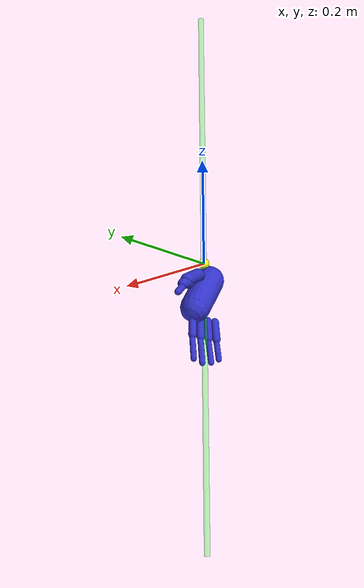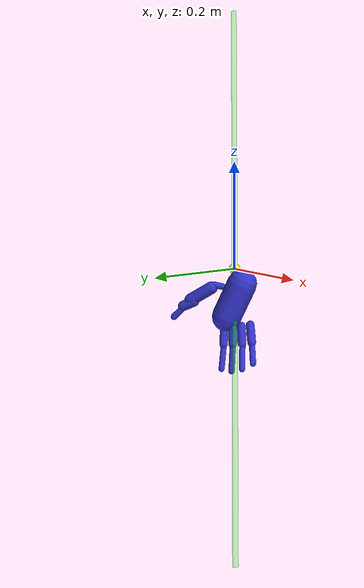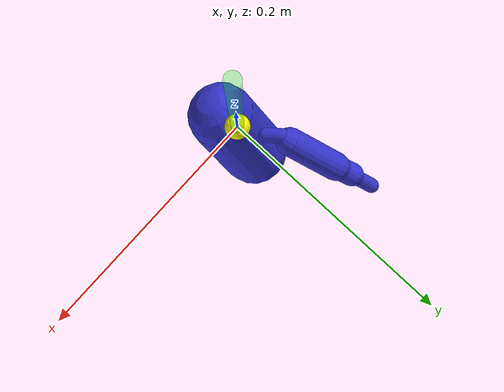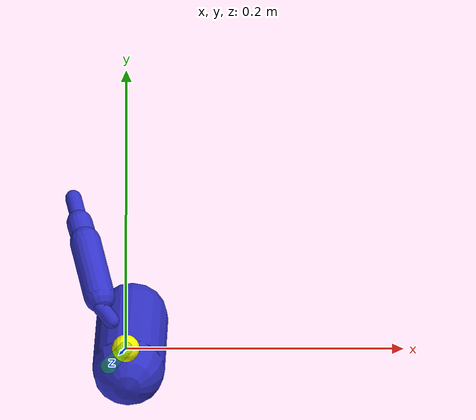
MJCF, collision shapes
<mujoco model="inspire right hand">
  <statistic center="0.3 0 0.4" extent="1"/>
  <compiler angle="radian" meshdir="./" autolimits="true"/>
  <visual>
    <headlight diffuse="0.6 0.6 0.6" ambient="0.3 0.3 0.3" specular="0 0 0"/>
    <rgba haze="0.15 0.25 0.35 1"/>
    <global azimuth="120" elevation="20"/>
  </visual>
  <default>
    <joint damping="1"/>
    <muscle ctrllimited="true" ctrlrange="0 100"/>
    <motor ctrllimited="true" ctrlrange="-3 3"/>
    <position ctrllimited="true" kp="10"/>
  </default>
  <asset>
    <mesh name="r_palm_vis" file="meshes/inspire_hands/rh_base_link.STL"/>
    <mesh name="r_palm_col" file="meshes/inspire_hands/rh_base_link.STL"/>
    <mesh name="r_thumb_proximal_1_vis" file="meshes/inspire_hands/rh_Link11.STL"/>
    <mesh name="r_thumb_proximal_1_col" file="meshes/inspire_hands/rh_Link11.STL"/>
    <mesh name="r_thumb_proximal_2_vis" file="meshes/inspire_hands/rh_Link12.STL"/>
    <mesh name="r_thumb_proximal_2_col" file="meshes/inspire_hands/rh_Link12.STL"/>
    <mesh name="r_thumb_middle_vis" file="meshes/inspire_hands/rh_Link13.STL"/>
    <mesh name="r_thumb_middle_col" file="meshes/inspire_hands/rh_Link13.STL"/>
    <mesh name="r_thumb_distal_vis" file="meshes/inspire_hands/rh_Link14.STL"/>
    <mesh name="r_thumb_distal_col" file="meshes/inspire_hands/rh_Link14.STL"/>
    <mesh name="r_index_proximal_vis" file="meshes/inspire_hands/rh_Link15.STL"/>
    <mesh name="r_index_proximal_col" file="meshes/inspire_hands/rh_Link15.STL"/>
    <mesh name="r_index_distal_vis" file="meshes/inspire_hands/rh_Link16.STL"/>
    <mesh name="r_index_distal_col" file="meshes/inspire_hands/rh_Link16.STL"/>
    <mesh name="r_middle_proximal_vis" file="meshes/inspire_hands/rh_Link17.STL"/>
    <mesh name="r_middle_proximal_col" file="meshes/inspire_hands/rh_Link17.STL"/>
    <mesh name="r_middle_distal_vis" file="meshes/inspire_hands/rh_Link18.STL"/>
    <mesh name="r_middle_distal_col" file="meshes/inspire_hands/rh_Link18.STL"/>
    <mesh name="r_ring_proximal_vis" file="meshes/inspire_hands/rh_Link19.STL"/>
    <mesh name="r_ring_proximal_col" file="meshes/inspire_hands/rh_Link19.STL"/>
    <mesh name="r_ring_distal_vis" file="meshes/inspire_hands/rh_Link20.STL"/>
    <mesh name="r_ring_distal_col" file="meshes/inspire_hands/rh_Link20.STL"/>
    <mesh name="r_pinky_proximal_vis" file="meshes/inspire_hands/rh_Link21.STL"/>
    <mesh name="r_pinky_proximal_col" file="meshes/inspire_hands/rh_Link21.STL"/>
    <mesh name="r_pinky_distal_vis" file="meshes/inspire_hands/rh_Link22.STL"/>
    <mesh name="r_pinky_distal_col" file="meshes/inspire_hands/rh_Link22.STL"/>
    <material name="site_right_hand" rgba="0.1882 0.1882 0.1882 0"/>
    <material name="r_base_material" rgba="0 0 0 1"/>
    <material name="r_thumb_material" rgba="0 0 0 1"/>
    <material name="r_index_material" rgba="0 0 0 1"/>
    <material name="r_middle_material" rgba="0 0 0 1"/>
    <material name="r_ring_material" rgba="0 0 0 1"/>
    <material name="r_pinky_material" rgba="0 0 0 1"/>
    <material name="r_thumb_distal_material" rgba="0 0 0 1"/>
  </asset>
  <worldbody>
    <body name="right_hand" pos="0 0 0" quat="0.7071068 0.7071068 0 0">
      <site name="ft_frame" pos="0 0 0" size="0.01 0.01 0.01" rgba="1 0 0 0" type="sphere" group="1"/>
      <inertial diaginertia="0 0 0" mass="0" pos="0 0 0"/>
      <body name="eef" pos="0 0 0" quat="0.707 0. -0.707 0.">
        <site name="grip_site" pos="0 0 0" size="0.01 0.01 0.01" rgba="1 1 0 1" type="sphere" group="2"/>
        <site name="ee_x" pos="0.1 0 0" size="0.005 .1" quat="0.707105  0 0.707108 0 " rgba="1 0 0 0" type="cylinder" group="1"/>
        <site name="ee_y" pos="0 0.1 0" size="0.005 .1" quat="0.707105 0.707108 0 0" rgba="0 1 0 0" type="cylinder" group="1"/>
        <site name="ee_z" pos="0 0 0.1" size="0.005 .1" quat="1 0 0 0" rgba="0 0 1 0" type="cylinder" group="1"/>
        <site name="grip_site_cylinder" pos="0 0 0" quat="-0.5 -0.5 -0.5 0.5" size="0.005 0.5" rgba="0 1 0 0.3" type="cylinder" group="1"/>
      </body>
      <body name="r_palm" pos="0 0 0">
        <geom name="r_palm_vis" type="mesh" mesh="r_palm_vis" material="r_base_material" group="1" contype="0" conaffinity="0"/>
        <geom name="r_palm_col" type="capsule" mass="0.1" pos="0.002151 -0.056320 -0.002167" quat="0.876998 -0.480329 -0.012593 0.000000" size="0.026290 0.033685" rgba="0.2 0.2 0.8 0.5"/>
        <body name="r_thumb" pos="0. 0. 0.">
          <body name="r_thumb_proximal_1" pos="-0.01496 -0.0375 -0.02045" quat="0.5 0.5 -0.5 0.5">
            <joint name="joint_r_thumb_proximal_1" type="hinge" pos="0 0 0" axis="0 0 -1" range="0 1.30" limited="true" damping="1"/>
            <geom name="r_thumb_proximal_vis" type="mesh" mesh="r_thumb_proximal_1_vis" material="r_thumb_material" group="1" contype="0" conaffinity="0"> </geom>
            <geom name="r_thumb_proximal_col" type="capsule" mass="0.1" pos="-0.003896 0.000170 -0.007183" quat="0.624328 -0.487842 -0.610102 0.000000" size="0.005837 0.006488" rgba="0.2 0.2 0.8 0.5"/>
            <body name="r_thumb_proximal_2" pos="-0.0088099 0.010892 -0.00925" quat="0.1 0.1 0.7 0.7">
              <joint name="joint_r_thumb_proximal_2" type="hinge" pos="0 0 0" axis="0 0 1" range="0 0.68" limited="true" damping="1"/>
              <geom name="r_thumb_proximal_2_vis" type="mesh" mesh="r_thumb_proximal_2_vis" material="r_thumb_material" group="1" contype="0" conaffinity="0"> </geom>
              <geom name="r_thumb_proximal_2_col" type="capsule" mass="0.1" pos="0.026056 0.015147 -0.008029" quat="0.712011 0.306151 -0.631912 0.000000" size="0.011387 0.022875" rgba="0.2 0.2 0.8 0.5"/>
              <site name="site_r_thumb_proximal_2" size="0.01" material="site_right_hand"/>
              <body name="r_thumb_middle" pos="0.04407 0.034553 -0.0008" quat="1 0 0 0">
                <joint name="joint_r_thumb_middle" type="hinge" pos="0 0 0" axis="0 0 1" range="0 0.68" limited="true" damping="1"/>
                <geom name="r_thumb_middle_vis" type="mesh" mesh="r_thumb_middle_vis" material="r_thumb_material" group="1" contype="0" conaffinity="0"/>
                <geom name="r_thumb_middle_col" type="capsule" mass="0.1" pos="0.006593 -0.002430 -0.007229" quat="0.714062 -0.232948 0.660189 0.000000" size="0.009445 0.011355" rgba="0.2 0.2 0.8 0.5"/>
                <site name="site_r_thumb_middle" size="0.01" material="site_right_hand"/>
                <body name="r_thumb_distal" pos="0.020248 0.010156 -0.0012" quat="1 0 0 0">
                  <joint name="joint_r_thumb_distal" type="hinge" pos="0 0 0" axis="0 0 1" range="0 0.77" limited="true" damping="1"/>
                  <geom name="r_thumb_distal_vis" type="mesh" mesh="r_thumb_distal_vis" material="r_thumb_distal_material" group="1" contype="0" conaffinity="0"> </geom>
                  <geom name="r_thumb_distal_col" type="capsule" mass="0.1" pos="0.008683 0.004374 -0.005997" quat="0.707842 -0.454578 0.540665 0.000000" size="0.006027 0.009085" rgba="0.2 0.2 0.8 0.5"/>
                  <site name="site_r_thumb_distal" size="0.01" material="site_right_hand"/>
                </body>
              </body>
            </body>
          </body>
        </body>
        <body name="r_index" pos="0 0 0">
          <body name="r_index_proximal" pos="0.0022853 -0.10493 -0.032268" quat="0.01745 -0.99985 0.0 0.0">
            <joint name="joint_r_index_proximal" type="hinge" pos="0 0 0" axis="0 0 1" range="0 1.62" limited="true" damping="1"/>
            <site name="site_r_index_proximal" size="0.01" material="site_right_hand"/>
            <geom name="r_index_proximal_vis" type="mesh" mesh="r_index_proximal_vis" material="r_index_material" group="1" contype="0" conaffinity="0"/>
            <geom name="r_index_proximal_col" type="capsule" mass="0.1" pos="0.001064 0.013080 -0.006003" quat="0.706625 -0.707445 -0.014213 0.000000" size="0.007360 0.015263" rgba="0.2 0.2 0.8 0.5"/>
            <body name="r_index_distal" pos="-0.0026138 0.032026 -0.001" quat="1 0 0 0">
              <joint name="joint_r_index_distal" type="hinge" pos="0 0 0" axis="0 0 1" range="0 1.82" limited="true" damping="1"/>
              <site name="site_r_index_distal" size="0.01" material="site_right_hand"/>
              <geom name="r_index_distal_vis" type="mesh" mesh="r_index_distal_vis" material="r_index_material" group="1" contype="0" conaffinity="0"/>
              <geom name="r_index_distal_col" type="capsule" mass="0.1" pos="0.001868 0.018698 -0.005002" quat="0.706829 -0.703170 -0.077110 0.000000" size="0.005230 0.021492" rgba="0.2 0.2 0.8 0.5"/>
            </body>
          </body>
        </body>
        <body name="r_middle" pos="0 0 0">
          <body name="r_middle_proximal" pos="0.0022853 -0.1055 -0.01295" quat="0 -1 0.0 0.0">
            <joint name="joint_r_middle_proximal" type="hinge" pos="0 0 0" axis="0 0 1" range="0 1.62" limited="true" damping="1"/>
            <site name="site_r_middle_proximal" size="0.01" material="site_right_hand"/>
            <geom name="r_middle_proximal_vis" type="mesh" mesh="r_middle_proximal_vis" material="r_middle_material" group="1" contype="0" conaffinity="0"/>
            <geom name="r_middle_proximal_col" type="capsule" mass="0.1" pos="0.001142 0.013073 -0.006003" quat="0.706625 -0.707517 -0.009996 0.000000" size="0.007360 0.015263" rgba="0.2 0.2 0.8 0.5"/>
            <body name="r_middle_distal" pos="-0.0024229 0.032041 -0.001" quat="1 0 0 0">
              <joint name="joint_r_middle_distal" type="hinge" pos="0 0 0" axis="0 0 1" range="0 1.82" limited="true" damping="1"/>
              <site name="site_r_middle_distal" size="0.01" material="site_right_hand"/>
              <geom name="r_middle_distal_vis" type="mesh" mesh="r_middle_distal_vis" material="r_middle_material" group="1" contype="0" conaffinity="0"/>
              <geom name="r_middle_distal_col" type="capsule" mass="0.1" pos="0.001696 0.020424 -0.004999" quat="0.707206 -0.704471 -0.059839 0.000000" size="0.005296 0.023096" rgba="0.2 0.2 0.8 0.5"/>
            </body>
          </body>
        </body>
        <body name="r_ring" pos="0 0 0">
          <body name="r_ring_proximal" pos="0.0022853 -0.10531 0.0062872" quat="0.02619 0.99966 0.0 0.0">
            <joint name="joint_r_ring_proximal" type="hinge" pos="0 0 0" axis="0 0 1" range="0 1.62" limited="true" damping="1"/>
            <site name="site_r_ring_proximal" size="0.01" material="site_right_hand"/>
            <geom name="r_ring_proximal_vis" type="mesh" mesh="r_ring_proximal_vis" material="r_ring_material" group="1" contype="0" conaffinity="0"/>
            <geom name="r_ring_proximal_col" type="capsule" mass="0.1" pos="0.001142 0.013073 -0.006003" quat="0.706625 -0.707517 -0.009996 0.000000" size="0.007360 0.015263" rgba="0.2 0.2 0.8 0.5"/>
            <body name="r_ring_distal" pos="-0.0024229 0.032041 -0.001" quat="1 0 0 0">
              <joint name="joint_r_ring_distal" type="hinge" pos="0 0 0" axis="0 0 1" range="0 1.75" limited="true" damping="1"/>
              <site name="site_r_ring_distal" size="0.01" material="site_right_hand"/>
              <geom name="r_ring_distal_vis" type="mesh" mesh="r_ring_distal_vis" material="r_ring_material" group="1" contype="0" conaffinity="0"/>
              <geom name="r_ring_distal_col" type="capsule" mass="0.1" pos="0.002058 0.018677 -0.005002" quat="0.706821 -0.703801 -0.071188 0.000000" size="0.005235 0.021487" rgba="0.2 0.2 0.8 0.5"/>
            </body>
          </body>
        </body>
        <body name="r_pinky" pos="0 0 0">
          <body name="r_pinky_proximal" pos="0.0022853 -0.10411 0.025488" quat="0.05232 0.99863 0.0 0.0">
            <joint name="joint_r_pinky_proximal" type="hinge" pos="0 0 0" axis="0 0 1" range="0 1.62" limited="true" damping="1"/>
            <site name="site_r_pinky_proximal" size="0.01" material="site_right_hand"/>
            <geom name="r_pinky_proximal_vis" type="mesh" mesh="r_pinky_proximal_vis" material="r_pinky_material" group="1" contype="0" conaffinity="0"/>
            <geom name="r_pinky_proximal_col" type="capsule" mass="0.1" pos="0.001142 0.013073 -0.006003" quat="0.706625 -0.707517 -0.009996 0.000000" size="0.007360 0.015263" rgba="0.2 0.2 0.8 0.5"/>
            <body name="r_pinky_distal" pos="-0.0024229 0.032041 -0.001" quat="1 0 0 0">
              <joint name="joint_r_pinky_distal" type="hinge" pos="0 0 0" axis="0 0 1" range="0 1.87" limited="true" damping="1"/>
              <site name="site_r_pinky_distal" size="0.01" material="site_right_hand"/>
              <geom name="r_pinky_distal_vis" type="mesh" mesh="r_pinky_distal_vis" material="r_pinky_material" group="1" contype="0" conaffinity="0"/>
              <geom name="r_pinky_distal_col" type="capsule" mass="0.1" pos="0.002666 0.014888 -0.004999" quat="0.707312 -0.705530 -0.044010 0.000000" size="0.005192 0.017539" rgba="0.2 0.2 0.8 0.5"/>
            </body>
          </body>
        </body>
      </body>
    </body>
  </worldbody>
  <contact>
    <exclude name="exclude_rh_palm_thumb_proximal_1" body1="r_thumb_proximal_1" body2="r_palm"/>
    <exclude name="exclude_rh_palm_thumb_proximal_1_proximal_2" body1="r_thumb_proximal_1" body2="r_thumb_proximal_2"/>
    <exclude name="exclude_rh_palm_thumb_proximal_2" body1="r_thumb_proximal_2" body2="r_palm"/>
    <exclude name="exclude_rh_palm_thumb_middle_2" body1="r_thumb_middle" body2="r_palm"/>
    <exclude name="exclude_rh_thumb_proximal_2_middle" body1="r_thumb_proximal_2" body2="r_thumb_middle"/>
    <exclude name="exclude_rh_thumb_middle_distal" body1="r_thumb_middle" body2="r_thumb_distal"/>
    <exclude name="exclude_rh_palm_index_proximal" body1="r_index_proximal" body2="r_palm"/>
    <exclude name="exclude_rh_palm_middle_proximal" body1="r_middle_proximal" body2="r_palm"/>
    <exclude name="exclude_rh_palm_ring_proximal" body1="r_ring_proximal" body2="r_palm"/>
    <exclude name="exclude_rh_palm_pinky_proximal" body1="r_pinky_proximal" body2="r_palm"/>
  </contact>
  <actuator>
    <position joint="joint_r_pinky_distal" name="pinky_distal_drive" ctrlrange="0 1.87" kp="2" forcelimited="true" forcerange="-20 20"/>
    <position joint="joint_r_pinky_proximal" name="pinky_proximal_drive" ctrlrange="0 1.62" kp="2" forcelimited="true" forcerange="-20 20"/>
    <position joint="joint_r_ring_distal" name="ring_distal_drive" ctrlrange="0 1.75" kp="2" forcelimited="true" forcerange="-20 20"/>
    <position joint="joint_r_ring_proximal" name="ring_proximal_drive" ctrlrange="0 1.62" kp="2" forcelimited="true" forcerange="-20 20"/>
    <position joint="joint_r_middle_distal" name="middle_distal_drive" ctrlrange="0 1.82" kp="2" forcelimited="true" forcerange="-20 20"/>
    <position joint="joint_r_middle_proximal" name="middle_proximal_drive" ctrlrange="0 1.62" kp="2" forcelimited="true" forcerange="-20 20"/>
    <position joint="joint_r_index_distal" name="index_distal_drive" ctrlrange="0 1.82" kp="2" forcelimited="true" forcerange="-20 20"/>
    <position joint="joint_r_index_proximal" name="index_proximal_drive" ctrlrange="0 1.62" kp="2" forcelimited="true" forcerange="-20 20"/>
    <position joint="joint_r_thumb_distal" name="thumb_distal_drive" ctrlrange="0 0.77" kp="2" forcelimited="true" forcerange="-20 20"/>
    <position joint="joint_r_thumb_middle" name="thumb_middle_drive" ctrlrange="0 0.68" kp="2" forcelimited="true" forcerange="-20 20"/>
    <position joint="joint_r_thumb_proximal_2" name="thumb_proximal_2_drive" ctrlrange="0 0.68" kp="2" forcelimited="true" forcerange="-20 20"/>
    <position joint="joint_r_thumb_proximal_1" name="thumb_proximal_1_drive" ctrlrange="0 1.3" kp="4" forcelimited="true" forcerange="-20 20"/>
  </actuator>
  <sensor>
    <force name="force_ee" site="ft_frame"/>
    <torque name="torque_ee" site="ft_frame"/>
  </sensor>
</mujoco>
